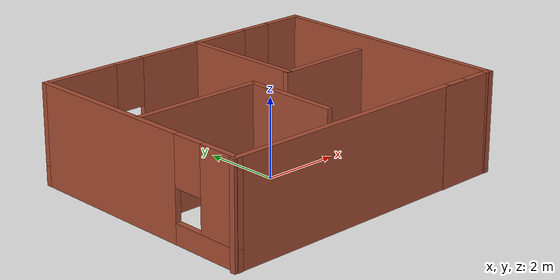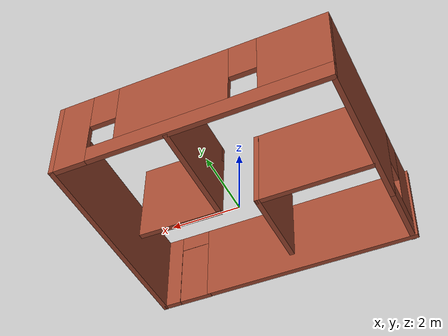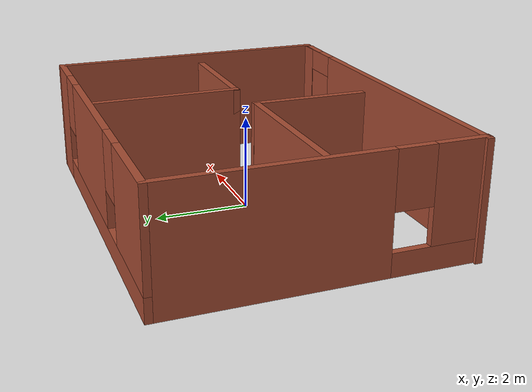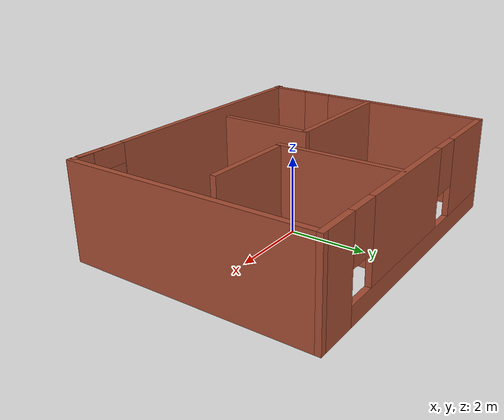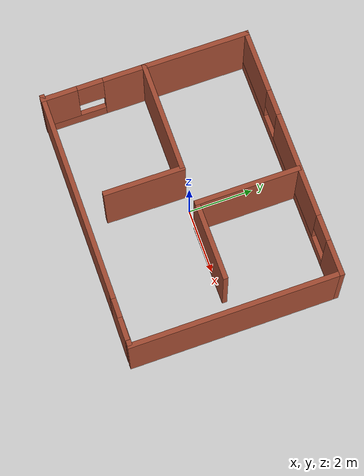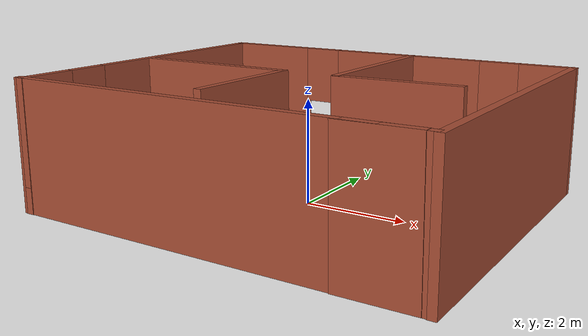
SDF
<?xml version='1.0'?>
<sdf version='1.6'>
  <model name='airmate_map'>
    <link name='Wall_0'>
      <pose frame=''>-0.07467 -3.15181 0 0 -0 0</pose>
      <self_collide>0</self_collide>
      <kinematic>0</kinematic>
      <visual name='Wall_0_Visual_0'>
        <pose frame=''>-0.723418 0 1.25 0 -0 0</pose>
        <geometry>
          <box>
            <size>6.55316 0.15 2.5</size>
          </box>
        </geometry>
        <material>
          <script>
            <uri>file://media/materials/scripts/gazebo.material</uri>
            <name>Gazebo/Bricks</name>
          </script>
          <ambient>1 1 1 1</ambient>
          <diffuse>1 1 1 1</diffuse>
          <specular>0.2 0.2 0.2 1</specular>
          <emissive>0 0 0 1</emissive>
        </material>
        <cast_shadows>1</cast_shadows>
        <transparency>0</transparency>
      </visual>
      <visual name='Wall_0_Visual_1'>
        <pose frame=''>3.72658 0 1.25 0 -0 0</pose>
        <geometry>
          <box>
            <size>0.546836 0.15 2.5</size>
          </box>
        </geometry>
        <material>
          <script>
            <uri>file://media/materials/scripts/gazebo.material</uri>
            <name>Gazebo/Bricks</name>
          </script>
          <ambient>1 1 1 1</ambient>
          <diffuse>1 1 1 1</diffuse>
          <specular>0.2 0.2 0.2 1</specular>
          <emissive>0 0 0 1</emissive>
        </material>
        <cast_shadows>1</cast_shadows>
        <transparency>0</transparency>
      </visual>
      <visual name='Wall_0_Visual_2'>
        <pose frame=''>3.00316 0 2.25 0 -0 0</pose>
        <geometry>
          <box>
            <size>0.9 0.15 0.5</size>
          </box>
        </geometry>
        <material>
          <script>
            <uri>file://media/materials/scripts/gazebo.material</uri>
            <name>Gazebo/Bricks</name>
          </script>
          <ambient>1 1 1 1</ambient>
          <diffuse>1 1 1 1</diffuse>
          <specular>0.2 0.2 0.2 1</specular>
          <emissive>0 0 0 1</emissive>
        </material>
        <cast_shadows>1</cast_shadows>
        <transparency>0</transparency>
      </visual>
      <collision name='Wall_0_Collision_0'>
        <laser_retro>0</laser_retro>
        <max_contacts>10</max_contacts>
        <pose frame=''>-0.723418 0 1.25 0 -0 0</pose>
        <geometry>
          <box>
            <size>6.55316 0.15 2.5</size>
          </box>
        </geometry>
        <surface>
          <friction>
            <ode>
              <mu>1</mu>
              <mu2>1</mu2>
              <fdir1>0 0 0</fdir1>
              <slip1>0</slip1>
              <slip2>0</slip2>
            </ode>
            <torsional>
              <coefficient>1</coefficient>
              <patch_radius>0</patch_radius>
              <surface_radius>0</surface_radius>
              <use_patch_radius>1</use_patch_radius>
              <ode>
                <slip>0</slip>
              </ode>
            </torsional>
          </friction>
          <bounce>
            <restitution_coefficient>0</restitution_coefficient>
            <threshold>1e+06</threshold>
          </bounce>
          <contact>
            <collide_without_contact>0</collide_without_contact>
            <collide_without_contact_bitmask>1</collide_without_contact_bitmask>
            <collide_bitmask>1</collide_bitmask>
            <ode>
              <soft_cfm>0</soft_cfm>
              <soft_erp>0.2</soft_erp>
              <kp>1e+13</kp>
              <kd>1</kd>
              <max_vel>0.01</max_vel>
              <min_depth>0</min_depth>
            </ode>
            <bullet>
              <split_impulse>1</split_impulse>
              <split_impulse_penetration_threshold>-0.01</split_impulse_penetration_threshold>
              <soft_cfm>0</soft_cfm>
              <soft_erp>0.2</soft_erp>
              <kp>1e+13</kp>
              <kd>1</kd>
            </bullet>
          </contact>
        </surface>
      </collision>
      <collision name='Wall_0_Collision_1'>
        <laser_retro>0</laser_retro>
        <max_contacts>10</max_contacts>
        <pose frame=''>3.72658 0 1.25 0 -0 0</pose>
        <geometry>
          <box>
            <size>0.546836 0.15 2.5</size>
          </box>
        </geometry>
        <surface>
          <friction>
            <ode>
              <mu>1</mu>
              <mu2>1</mu2>
              <fdir1>0 0 0</fdir1>
              <slip1>0</slip1>
              <slip2>0</slip2>
            </ode>
            <torsional>
              <coefficient>1</coefficient>
              <patch_radius>0</patch_radius>
              <surface_radius>0</surface_radius>
              <use_patch_radius>1</use_patch_radius>
              <ode>
                <slip>0</slip>
              </ode>
            </torsional>
          </friction>
          <bounce>
            <restitution_coefficient>0</restitution_coefficient>
            <threshold>1e+06</threshold>
          </bounce>
          <contact>
            <collide_without_contact>0</collide_without_contact>
            <collide_without_contact_bitmask>1</collide_without_contact_bitmask>
            <collide_bitmask>1</collide_bitmask>
            <ode>
              <soft_cfm>0</soft_cfm>
              <soft_erp>0.2</soft_erp>
              <kp>1e+13</kp>
              <kd>1</kd>
              <max_vel>0.01</max_vel>
              <min_depth>0</min_depth>
            </ode>
            <bullet>
              <split_impulse>1</split_impulse>
              <split_impulse_penetration_threshold>-0.01</split_impulse_penetration_threshold>
              <soft_cfm>0</soft_cfm>
              <soft_erp>0.2</soft_erp>
              <kp>1e+13</kp>
              <kd>1</kd>
            </bullet>
          </contact>
        </surface>
      </collision>
      <collision name='Wall_0_Collision_2'>
        <laser_retro>0</laser_retro>
        <max_contacts>10</max_contacts>
        <pose frame=''>3.00316 0 2.25 0 -0 0</pose>
        <geometry>
          <box>
            <size>0.9 0.15 0.5</size>
          </box>
        </geometry>
        <surface>
          <friction>
            <ode>
              <mu>1</mu>
              <mu2>1</mu2>
              <fdir1>0 0 0</fdir1>
              <slip1>0</slip1>
              <slip2>0</slip2>
            </ode>
            <torsional>
              <coefficient>1</coefficient>
              <patch_radius>0</patch_radius>
              <surface_radius>0</surface_radius>
              <use_patch_radius>1</use_patch_radius>
              <ode>
                <slip>0</slip>
              </ode>
            </torsional>
          </friction>
          <bounce>
            <restitution_coefficient>0</restitution_coefficient>
            <threshold>1e+06</threshold>
          </bounce>
          <contact>
            <collide_without_contact>0</collide_without_contact>
            <collide_without_contact_bitmask>1</collide_without_contact_bitmask>
            <collide_bitmask>1</collide_bitmask>
            <ode>
              <soft_cfm>0</soft_cfm>
              <soft_erp>0.2</soft_erp>
              <kp>1e+13</kp>
              <kd>1</kd>
              <max_vel>0.01</max_vel>
              <min_depth>0</min_depth>
            </ode>
            <bullet>
              <split_impulse>1</split_impulse>
              <split_impulse_penetration_threshold>-0.01</split_impulse_penetration_threshold>
              <soft_cfm>0</soft_cfm>
              <soft_erp>0.2</soft_erp>
              <kp>1e+13</kp>
              <kd>1</kd>
            </bullet>
          </contact>
        </surface>
      </collision>
    </link>
    <link name='Wall_1'>
      <pose frame=''>3.925 0.010244 0 0 -0 1.5708</pose>
      <self_collide>0</self_collide>
      <kinematic>0</kinematic>
      <visual name='Wall_1_Visual'>
        <pose frame=''>0 0 1.25 0 -0 0</pose>
        <geometry>
          <box>
            <size>6.5 0.15 2.5</size>
          </box>
        </geometry>
        <material>
          <script>
            <uri>file://media/materials/scripts/gazebo.material</uri>
            <name>Gazebo/Bricks</name>
          </script>
          <ambient>1 1 1 1</ambient>
          <diffuse>1 1 1 1</diffuse>
          <specular>0.2 0.2 0.2 1</specular>
          <emissive>0 0 0 1</emissive>
        </material>
        <cast_shadows>1</cast_shadows>
        <transparency>0</transparency>
      </visual>
      <collision name='Wall_1_Collision'>
        <laser_retro>0</laser_retro>
        <max_contacts>10</max_contacts>
        <pose frame=''>0 0 1.25 0 -0 0</pose>
        <geometry>
          <box>
            <size>6.5 0.15 2.5</size>
          </box>
        </geometry>
        <surface>
          <friction>
            <ode>
              <mu>1</mu>
              <mu2>1</mu2>
              <fdir1>0 0 0</fdir1>
              <slip1>0</slip1>
              <slip2>0</slip2>
            </ode>
            <torsional>
              <coefficient>1</coefficient>
              <patch_radius>0</patch_radius>
              <surface_radius>0</surface_radius>
              <use_patch_radius>1</use_patch_radius>
              <ode>
                <slip>0</slip>
              </ode>
            </torsional>
          </friction>
          <bounce>
            <restitution_coefficient>0</restitution_coefficient>
            <threshold>1e+06</threshold>
          </bounce>
          <contact>
            <collide_without_contact>0</collide_without_contact>
            <collide_without_contact_bitmask>1</collide_without_contact_bitmask>
            <collide_bitmask>1</collide_bitmask>
            <ode>
              <soft_cfm>0</soft_cfm>
              <soft_erp>0.2</soft_erp>
              <kp>1e+13</kp>
              <kd>1</kd>
              <max_vel>0.01</max_vel>
              <min_depth>0</min_depth>
            </ode>
            <bullet>
              <split_impulse>1</split_impulse>
              <split_impulse_penetration_threshold>-0.01</split_impulse_penetration_threshold>
              <soft_cfm>0</soft_cfm>
              <soft_erp>0.2</soft_erp>
              <kp>1e+13</kp>
              <kd>1</kd>
            </bullet>
          </contact>
        </surface>
      </collision>
    </link>
    <link name='Wall_10'>
      <pose frame=''>0.57679 1.57908 0 0 -0 1.5708</pose>
      <self_collide>0</self_collide>
      <kinematic>0</kinematic>
      <visual name='Wall_10_Visual'>
        <pose frame=''>0 0 1.25 0 -0 0</pose>
        <geometry>
          <box>
            <size>3.25 0.15 2.5</size>
          </box>
        </geometry>
        <material>
          <script>
            <uri>file://media/materials/scripts/gazebo.material</uri>
            <name>Gazebo/Bricks</name>
          </script>
          <ambient>1 1 1 1</ambient>
          <diffuse>1 1 1 1</diffuse>
          <specular>0.2 0.2 0.2 1</specular>
          <emissive>0 0 0 1</emissive>
        </material>
        <cast_shadows>1</cast_shadows>
        <transparency>0</transparency>
      </visual>
      <collision name='Wall_10_Collision'>
        <laser_retro>0</laser_retro>
        <max_contacts>10</max_contacts>
        <pose frame=''>0 0 1.25 0 -0 0</pose>
        <geometry>
          <box>
            <size>3.25 0.15 2.5</size>
          </box>
        </geometry>
        <surface>
          <friction>
            <ode>
              <mu>1</mu>
              <mu2>1</mu2>
              <fdir1>0 0 0</fdir1>
              <slip1>0</slip1>
              <slip2>0</slip2>
            </ode>
            <torsional>
              <coefficient>1</coefficient>
              <patch_radius>0</patch_radius>
              <surface_radius>0</surface_radius>
              <use_patch_radius>1</use_patch_radius>
              <ode>
                <slip>0</slip>
              </ode>
            </torsional>
          </friction>
          <bounce>
            <restitution_coefficient>0</restitution_coefficient>
            <threshold>1e+06</threshold>
          </bounce>
          <contact>
            <collide_without_contact>0</collide_without_contact>
            <collide_without_contact_bitmask>1</collide_without_contact_bitmask>
            <collide_bitmask>1</collide_bitmask>
            <ode>
              <soft_cfm>0</soft_cfm>
              <soft_erp>0.2</soft_erp>
              <kp>1e+13</kp>
              <kd>1</kd>
              <max_vel>0.01</max_vel>
              <min_depth>0</min_depth>
            </ode>
            <bullet>
              <split_impulse>1</split_impulse>
              <split_impulse_penetration_threshold>-0.01</split_impulse_penetration_threshold>
              <soft_cfm>0</soft_cfm>
              <soft_erp>0.2</soft_erp>
              <kp>1e+13</kp>
              <kd>1</kd>
            </bullet>
          </contact>
        </surface>
      </collision>
    </link>
    <link name='Wall_2'>
      <pose frame=''>0 3.18524 0 0 -0 3.14159</pose>
      <self_collide>0</self_collide>
      <kinematic>0</kinematic>
      <visual name='Wall_2_Visual_0'>
        <pose frame=''>-3.45031 0 1.25 0 -0 0</pose>
        <geometry>
          <box>
            <size>1.09939 0.15 2.5</size>
          </box>
        </geometry>
        <material>
          <script>
            <uri>file://media/materials/scripts/gazebo.material</uri>
            <name>Gazebo/Bricks</name>
          </script>
          <ambient>1 1 1 1</ambient>
          <diffuse>1 1 1 1</diffuse>
          <specular>0.2 0.2 0.2 1</specular>
          <emissive>0 0 0 1</emissive>
        </material>
        <cast_shadows>1</cast_shadows>
        <transparency>0</transparency>
      </visual>
      <visual name='Wall_2_Visual_1'>
        <pose frame=''>0.549693 0 0.25 0 -0 0</pose>
        <geometry>
          <box>
            <size>6.90061 0.15 0.5</size>
          </box>
        </geometry>
        <material>
          <script>
            <uri>file://media/materials/scripts/gazebo.material</uri>
            <name>Gazebo/Bricks</name>
          </script>
          <ambient>1 1 1 1</ambient>
          <diffuse>1 1 1 1</diffuse>
          <specular>0.2 0.2 0.2 1</specular>
          <emissive>0 0 0 1</emissive>
        </material>
        <cast_shadows>1</cast_shadows>
        <transparency>0</transparency>
      </visual>
      <visual name='Wall_2_Visual_2'>
        <pose frame=''>-0.457351 0 1.5 0 -0 0</pose>
        <geometry>
          <box>
            <size>3.28653 0.15 2</size>
          </box>
        </geometry>
        <material>
          <script>
            <uri>file://media/materials/scripts/gazebo.material</uri>
            <name>Gazebo/Bricks</name>
          </script>
          <ambient>1 1 1 1</ambient>
          <diffuse>1 1 1 1</diffuse>
          <specular>0.2 0.2 0.2 1</specular>
          <emissive>0 0 0 1</emissive>
        </material>
        <cast_shadows>1</cast_shadows>
        <transparency>0</transparency>
      </visual>
      <visual name='Wall_2_Visual_3'>
        <pose frame=''>2.99296 0 1.5 0 -0 0</pose>
        <geometry>
          <box>
            <size>2.01409 0.15 2</size>
          </box>
        </geometry>
        <material>
          <script>
            <uri>file://media/materials/scripts/gazebo.material</uri>
            <name>Gazebo/Bricks</name>
          </script>
          <ambient>1 1 1 1</ambient>
          <diffuse>1 1 1 1</diffuse>
          <specular>0.2 0.2 0.2 1</specular>
          <emissive>0 0 0 1</emissive>
        </material>
        <cast_shadows>1</cast_shadows>
        <transparency>0</transparency>
      </visual>
      <visual name='Wall_2_Visual_4'>
        <pose frame=''>-2.50061 0 1.9 0 -0 0</pose>
        <geometry>
          <box>
            <size>0.8 0.15 1.2</size>
          </box>
        </geometry>
        <material>
          <script>
            <uri>file://media/materials/scripts/gazebo.material</uri>
            <name>Gazebo/Bricks</name>
          </script>
          <ambient>1 1 1 1</ambient>
          <diffuse>1 1 1 1</diffuse>
          <specular>0.2 0.2 0.2 1</specular>
          <emissive>0 0 0 1</emissive>
        </material>
        <cast_shadows>1</cast_shadows>
        <transparency>0</transparency>
      </visual>
      <visual name='Wall_2_Visual_5'>
        <pose frame=''>1.58591 0 1.9 0 -0 0</pose>
        <geometry>
          <box>
            <size>0.8 0.15 1.2</size>
          </box>
        </geometry>
        <material>
          <script>
            <uri>file://media/materials/scripts/gazebo.material</uri>
            <name>Gazebo/Bricks</name>
          </script>
          <ambient>1 1 1 1</ambient>
          <diffuse>1 1 1 1</diffuse>
          <specular>0.2 0.2 0.2 1</specular>
          <emissive>0 0 0 1</emissive>
        </material>
        <cast_shadows>1</cast_shadows>
        <transparency>0</transparency>
      </visual>
      <collision name='Wall_2_Collision_0'>
        <laser_retro>0</laser_retro>
        <max_contacts>10</max_contacts>
        <pose frame=''>-3.45031 0 1.25 0 -0 0</pose>
        <geometry>
          <box>
            <size>1.09939 0.15 2.5</size>
          </box>
        </geometry>
        <surface>
          <friction>
            <ode>
              <mu>1</mu>
              <mu2>1</mu2>
              <fdir1>0 0 0</fdir1>
              <slip1>0</slip1>
              <slip2>0</slip2>
            </ode>
            <torsional>
              <coefficient>1</coefficient>
              <patch_radius>0</patch_radius>
              <surface_radius>0</surface_radius>
              <use_patch_radius>1</use_patch_radius>
              <ode>
                <slip>0</slip>
              </ode>
            </torsional>
          </friction>
          <bounce>
            <restitution_coefficient>0</restitution_coefficient>
            <threshold>1e+06</threshold>
          </bounce>
          <contact>
            <collide_without_contact>0</collide_without_contact>
            <collide_without_contact_bitmask>1</collide_without_contact_bitmask>
            <collide_bitmask>1</collide_bitmask>
            <ode>
              <soft_cfm>0</soft_cfm>
              <soft_erp>0.2</soft_erp>
              <kp>1e+13</kp>
              <kd>1</kd>
              <max_vel>0.01</max_vel>
              <min_depth>0</min_depth>
            </ode>
            <bullet>
              <split_impulse>1</split_impulse>
              <split_impulse_penetration_threshold>-0.01</split_impulse_penetration_threshold>
              <soft_cfm>0</soft_cfm>
              <soft_erp>0.2</soft_erp>
              <kp>1e+13</kp>
              <kd>1</kd>
            </bullet>
          </contact>
        </surface>
      </collision>
      <collision name='Wall_2_Collision_1'>
        <laser_retro>0</laser_retro>
        <max_contacts>10</max_contacts>
        <pose frame=''>0.549693 0 0.25 0 -0 0</pose>
        <geometry>
          <box>
            <size>6.90061 0.15 0.5</size>
          </box>
        </geometry>
        <surface>
          <friction>
            <ode>
              <mu>1</mu>
              <mu2>1</mu2>
              <fdir1>0 0 0</fdir1>
              <slip1>0</slip1>
              <slip2>0</slip2>
            </ode>
            <torsional>
              <coefficient>1</coefficient>
              <patch_radius>0</patch_radius>
              <surface_radius>0</surface_radius>
              <use_patch_radius>1</use_patch_radius>
              <ode>
                <slip>0</slip>
              </ode>
            </torsional>
          </friction>
          <bounce>
            <restitution_coefficient>0</restitution_coefficient>
            <threshold>1e+06</threshold>
          </bounce>
          <contact>
            <collide_without_contact>0</collide_without_contact>
            <collide_without_contact_bitmask>1</collide_without_contact_bitmask>
            <collide_bitmask>1</collide_bitmask>
            <ode>
              <soft_cfm>0</soft_cfm>
              <soft_erp>0.2</soft_erp>
              <kp>1e+13</kp>
              <kd>1</kd>
              <max_vel>0.01</max_vel>
              <min_depth>0</min_depth>
            </ode>
            <bullet>
              <split_impulse>1</split_impulse>
              <split_impulse_penetration_threshold>-0.01</split_impulse_penetration_threshold>
              <soft_cfm>0</soft_cfm>
              <soft_erp>0.2</soft_erp>
              <kp>1e+13</kp>
              <kd>1</kd>
            </bullet>
          </contact>
        </surface>
      </collision>
      <collision name='Wall_2_Collision_3'>
        <laser_retro>0</laser_retro>
        <max_contacts>10</max_contacts>
        <pose frame=''>2.99296 0 1.5 0 -0 0</pose>
        <geometry>
          <box>
            <size>2.01409 0.15 2</size>
          </box>
        </geometry>
        <surface>
          <friction>
            <ode>
              <mu>1</mu>
              <mu2>1</mu2>
              <fdir1>0 0 0</fdir1>
              <slip1>0</slip1>
              <slip2>0</slip2>
            </ode>
            <torsional>
              <coefficient>1</coefficient>
              <patch_radius>0</patch_radius>
              <surface_radius>0</surface_radius>
              <use_patch_radius>1</use_patch_radius>
              <ode>
                <slip>0</slip>
              </ode>
            </torsional>
          </friction>
          <bounce>
            <restitution_coefficient>0</restitution_coefficient>
            <threshold>1e+06</threshold>
          </bounce>
          <contact>
            <collide_without_contact>0</collide_without_contact>
            <collide_without_contact_bitmask>1</collide_without_contact_bitmask>
            <collide_bitmask>1</collide_bitmask>
            <ode>
              <soft_cfm>0</soft_cfm>
              <soft_erp>0.2</soft_erp>
              <kp>1e+13</kp>
              <kd>1</kd>
              <max_vel>0.01</max_vel>
              <min_depth>0</min_depth>
            </ode>
            <bullet>
              <split_impulse>1</split_impulse>
              <split_impulse_penetration_threshold>-0.01</split_impulse_penetration_threshold>
              <soft_cfm>0</soft_cfm>
              <soft_erp>0.2</soft_erp>
              <kp>1e+13</kp>
              <kd>1</kd>
            </bullet>
          </contact>
        </surface>
      </collision>
      <collision name='Wall_2_Collision_2'>
        <laser_retro>0</laser_retro>
        <max_contacts>10</max_contacts>
        <pose frame=''>-0.457351 0 1.5 0 -0 0</pose>
        <geometry>
          <box>
            <size>3.28653 0.15 2</size>
          </box>
        </geometry>
        <surface>
          <friction>
            <ode>
              <mu>1</mu>
              <mu2>1</mu2>
              <fdir1>0 0 0</fdir1>
              <slip1>0</slip1>
              <slip2>0</slip2>
            </ode>
            <torsional>
              <coefficient>1</coefficient>
              <patch_radius>0</patch_radius>
              <surface_radius>0</surface_radius>
              <use_patch_radius>1</use_patch_radius>
              <ode>
                <slip>0</slip>
              </ode>
            </torsional>
          </friction>
          <bounce>
            <restitution_coefficient>0</restitution_coefficient>
            <threshold>1e+06</threshold>
          </bounce>
          <contact>
            <collide_without_contact>0</collide_without_contact>
            <collide_without_contact_bitmask>1</collide_without_contact_bitmask>
            <collide_bitmask>1</collide_bitmask>
            <ode>
              <soft_cfm>0</soft_cfm>
              <soft_erp>0.2</soft_erp>
              <kp>1e+13</kp>
              <kd>1</kd>
              <max_vel>0.01</max_vel>
              <min_depth>0</min_depth>
            </ode>
            <bullet>
              <split_impulse>1</split_impulse>
              <split_impulse_penetration_threshold>-0.01</split_impulse_penetration_threshold>
              <soft_cfm>0</soft_cfm>
              <soft_erp>0.2</soft_erp>
              <kp>1e+13</kp>
              <kd>1</kd>
            </bullet>
          </contact>
        </surface>
      </collision>
      <collision name='Wall_2_Collision_4'>
        <laser_retro>0</laser_retro>
        <max_contacts>10</max_contacts>
        <pose frame=''>-2.50061 0 1.9 0 -0 0</pose>
        <geometry>
          <box>
            <size>0.8 0.15 1.2</size>
          </box>
        </geometry>
        <surface>
          <friction>
            <ode>
              <mu>1</mu>
              <mu2>1</mu2>
              <fdir1>0 0 0</fdir1>
              <slip1>0</slip1>
              <slip2>0</slip2>
            </ode>
            <torsional>
              <coefficient>1</coefficient>
              <patch_radius>0</patch_radius>
              <surface_radius>0</surface_radius>
              <use_patch_radius>1</use_patch_radius>
              <ode>
                <slip>0</slip>
              </ode>
            </torsional>
          </friction>
          <bounce>
            <restitution_coefficient>0</restitution_coefficient>
            <threshold>1e+06</threshold>
          </bounce>
          <contact>
            <collide_without_contact>0</collide_without_contact>
            <collide_without_contact_bitmask>1</collide_without_contact_bitmask>
            <collide_bitmask>1</collide_bitmask>
            <ode>
              <soft_cfm>0</soft_cfm>
              <soft_erp>0.2</soft_erp>
              <kp>1e+13</kp>
              <kd>1</kd>
              <max_vel>0.01</max_vel>
              <min_depth>0</min_depth>
            </ode>
            <bullet>
              <split_impulse>1</split_impulse>
              <split_impulse_penetration_threshold>-0.01</split_impulse_penetration_threshold>
              <soft_cfm>0</soft_cfm>
              <soft_erp>0.2</soft_erp>
              <kp>1e+13</kp>
              <kd>1</kd>
            </bullet>
          </contact>
        </surface>
      </collision>
      <collision name='Wall_2_Collision_5'>
        <laser_retro>0</laser_retro>
        <max_contacts>10</max_contacts>
        <pose frame=''>1.58591 0 1.9 0 -0 0</pose>
        <geometry>
          <box>
            <size>0.8 0.15 1.2</size>
          </box>
        </geometry>
        <surface>
          <friction>
            <ode>
              <mu>1</mu>
              <mu2>1</mu2>
              <fdir1>0 0 0</fdir1>
              <slip1>0</slip1>
              <slip2>0</slip2>
            </ode>
            <torsional>
              <coefficient>1</coefficient>
              <patch_radius>0</patch_radius>
              <surface_radius>0</surface_radius>
              <use_patch_radius>1</use_patch_radius>
              <ode>
                <slip>0</slip>
              </ode>
            </torsional>
          </friction>
          <bounce>
            <restitution_coefficient>0</restitution_coefficient>
            <threshold>1e+06</threshold>
          </bounce>
          <contact>
            <collide_without_contact>0</collide_without_contact>
            <collide_without_contact_bitmask>1</collide_without_contact_bitmask>
            <collide_bitmask>1</collide_bitmask>
            <ode>
              <soft_cfm>0</soft_cfm>
              <soft_erp>0.2</soft_erp>
              <kp>1e+13</kp>
              <kd>1</kd>
              <max_vel>0.01</max_vel>
              <min_depth>0</min_depth>
            </ode>
            <bullet>
              <split_impulse>1</split_impulse>
              <split_impulse_penetration_threshold>-0.01</split_impulse_penetration_threshold>
              <soft_cfm>0</soft_cfm>
              <soft_erp>0.2</soft_erp>
              <kp>1e+13</kp>
              <kd>1</kd>
            </bullet>
          </contact>
        </surface>
      </collision>
    </link>
    <link name='Wall_3'>
      <pose frame=''>-3.925 0.010244 0 0 0 -1.5708</pose>
      <self_collide>0</self_collide>
      <kinematic>0</kinematic>
      <visual name='Wall_3_Visual_0'>
        <pose frame=''>-0.961243 0 1.25 0 -0 0</pose>
        <geometry>
          <box>
            <size>4.57751 0.15 2.5</size>
          </box>
        </geometry>
        <material>
          <script>
            <uri>file://media/materials/scripts/gazebo.material</uri>
            <name>Gazebo/Bricks</name>
          </script>
          <ambient>1 1 1 1</ambient>
          <diffuse>1 1 1 1</diffuse>
          <specular>0.2 0.2 0.2 1</specular>
          <emissive>0 0 0 1</emissive>
        </material>
        <cast_shadows>1</cast_shadows>
        <transparency>0</transparency>
      </visual>
      <visual name='Wall_3_Visual_1'>
        <pose frame=''>2.28876 0 0.25 0 -0 0</pose>
        <geometry>
          <box>
            <size>1.92249 0.15 0.5</size>
          </box>
        </geometry>
        <material>
          <script>
            <uri>file://media/materials/scripts/gazebo.material</uri>
            <name>Gazebo/Bricks</name>
          </script>
          <ambient>1 1 1 1</ambient>
          <diffuse>1 1 1 1</diffuse>
          <specular>0.2 0.2 0.2 1</specular>
          <emissive>0 0 0 1</emissive>
        </material>
        <cast_shadows>1</cast_shadows>
        <transparency>0</transparency>
      </visual>
      <visual name='Wall_3_Visual_2'>
        <pose frame=''>2.68876 0 1.5 0 -0 0</pose>
        <geometry>
          <box>
            <size>1.12249 0.15 2</size>
          </box>
        </geometry>
        <material>
          <script>
            <uri>file://media/materials/scripts/gazebo.material</uri>
            <name>Gazebo/Bricks</name>
          </script>
          <ambient>1 1 1 1</ambient>
          <diffuse>1 1 1 1</diffuse>
          <specular>0.2 0.2 0.2 1</specular>
          <emissive>0 0 0 1</emissive>
        </material>
        <cast_shadows>1</cast_shadows>
        <transparency>0</transparency>
      </visual>
      <visual name='Wall_3_Visual_3'>
        <pose frame=''>1.72751 0 1.9 0 -0 0</pose>
        <geometry>
          <box>
            <size>0.8 0.15 1.2</size>
          </box>
        </geometry>
        <material>
          <script>
            <uri>file://media/materials/scripts/gazebo.material</uri>
            <name>Gazebo/Bricks</name>
          </script>
          <ambient>1 1 1 1</ambient>
          <diffuse>1 1 1 1</diffuse>
          <specular>0.2 0.2 0.2 1</specular>
          <emissive>0 0 0 1</emissive>
        </material>
        <cast_shadows>1</cast_shadows>
        <transparency>0</transparency>
      </visual>
      <collision name='Wall_3_Collision_0'>
        <laser_retro>0</laser_retro>
        <max_contacts>10</max_contacts>
        <pose frame=''>-0.961243 0 1.25 0 -0 0</pose>
        <geometry>
          <box>
            <size>4.57751 0.15 2.5</size>
          </box>
        </geometry>
        <surface>
          <friction>
            <ode>
              <mu>1</mu>
              <mu2>1</mu2>
              <fdir1>0 0 0</fdir1>
              <slip1>0</slip1>
              <slip2>0</slip2>
            </ode>
            <torsional>
              <coefficient>1</coefficient>
              <patch_radius>0</patch_radius>
              <surface_radius>0</surface_radius>
              <use_patch_radius>1</use_patch_radius>
              <ode>
                <slip>0</slip>
              </ode>
            </torsional>
          </friction>
          <bounce>
            <restitution_coefficient>0</restitution_coefficient>
            <threshold>1e+06</threshold>
          </bounce>
          <contact>
            <collide_without_contact>0</collide_without_contact>
            <collide_without_contact_bitmask>1</collide_without_contact_bitmask>
            <collide_bitmask>1</collide_bitmask>
            <ode>
              <soft_cfm>0</soft_cfm>
              <soft_erp>0.2</soft_erp>
              <kp>1e+13</kp>
              <kd>1</kd>
              <max_vel>0.01</max_vel>
              <min_depth>0</min_depth>
            </ode>
            <bullet>
              <split_impulse>1</split_impulse>
              <split_impulse_penetration_threshold>-0.01</split_impulse_penetration_threshold>
              <soft_cfm>0</soft_cfm>
              <soft_erp>0.2</soft_erp>
              <kp>1e+13</kp>
              <kd>1</kd>
            </bullet>
          </contact>
        </surface>
      </collision>
      <collision name='Wall_3_Collision_1'>
        <laser_retro>0</laser_retro>
        <max_contacts>10</max_contacts>
        <pose frame=''>2.28876 0 0.25 0 -0 0</pose>
        <geometry>
          <box>
            <size>1.92249 0.15 0.5</size>
          </box>
        </geometry>
        <surface>
          <friction>
            <ode>
              <mu>1</mu>
              <mu2>1</mu2>
              <fdir1>0 0 0</fdir1>
              <slip1>0</slip1>
              <slip2>0</slip2>
            </ode>
            <torsional>
              <coefficient>1</coefficient>
              <patch_radius>0</patch_radius>
              <surface_radius>0</surface_radius>
              <use_patch_radius>1</use_patch_radius>
              <ode>
                <slip>0</slip>
              </ode>
            </torsional>
          </friction>
          <bounce>
            <restitution_coefficient>0</restitution_coefficient>
            <threshold>1e+06</threshold>
          </bounce>
          <contact>
            <collide_without_contact>0</collide_without_contact>
            <collide_without_contact_bitmask>1</collide_without_contact_bitmask>
            <collide_bitmask>1</collide_bitmask>
            <ode>
              <soft_cfm>0</soft_cfm>
              <soft_erp>0.2</soft_erp>
              <kp>1e+13</kp>
              <kd>1</kd>
              <max_vel>0.01</max_vel>
              <min_depth>0</min_depth>
            </ode>
            <bullet>
              <split_impulse>1</split_impulse>
              <split_impulse_penetration_threshold>-0.01</split_impulse_penetration_threshold>
              <soft_cfm>0</soft_cfm>
              <soft_erp>0.2</soft_erp>
              <kp>1e+13</kp>
              <kd>1</kd>
            </bullet>
          </contact>
        </surface>
      </collision>
      <collision name='Wall_3_Collision_3'>
        <laser_retro>0</laser_retro>
        <max_contacts>10</max_contacts>
        <pose frame=''>1.72751 0 1.9 0 -0 0</pose>
        <geometry>
          <box>
            <size>0.8 0.15 1.2</size>
          </box>
        </geometry>
        <surface>
          <friction>
            <ode>
              <mu>1</mu>
              <mu2>1</mu2>
              <fdir1>0 0 0</fdir1>
              <slip1>0</slip1>
              <slip2>0</slip2>
            </ode>
            <torsional>
              <coefficient>1</coefficient>
              <patch_radius>0</patch_radius>
              <surface_radius>0</surface_radius>
              <use_patch_radius>1</use_patch_radius>
              <ode>
                <slip>0</slip>
              </ode>
            </torsional>
          </friction>
          <bounce>
            <restitution_coefficient>0</restitution_coefficient>
            <threshold>1e+06</threshold>
          </bounce>
          <contact>
            <collide_without_contact>0</collide_without_contact>
            <collide_without_contact_bitmask>1</collide_without_contact_bitmask>
            <collide_bitmask>1</collide_bitmask>
            <ode>
              <soft_cfm>0</soft_cfm>
              <soft_erp>0.2</soft_erp>
              <kp>1e+13</kp>
              <kd>1</kd>
              <max_vel>0.01</max_vel>
              <min_depth>0</min_depth>
            </ode>
            <bullet>
              <split_impulse>1</split_impulse>
              <split_impulse_penetration_threshold>-0.01</split_impulse_penetration_threshold>
              <soft_cfm>0</soft_cfm>
              <soft_erp>0.2</soft_erp>
              <kp>1e+13</kp>
              <kd>1</kd>
            </bullet>
          </contact>
        </surface>
      </collision>
      <collision name='Wall_3_Collision_2'>
        <laser_retro>0</laser_retro>
        <max_contacts>10</max_contacts>
        <pose frame=''>2.68876 0 1.5 0 -0 0</pose>
        <geometry>
          <box>
            <size>1.12249 0.15 2</size>
          </box>
        </geometry>
        <surface>
          <friction>
            <ode>
              <mu>1</mu>
              <mu2>1</mu2>
              <fdir1>0 0 0</fdir1>
              <slip1>0</slip1>
              <slip2>0</slip2>
            </ode>
            <torsional>
              <coefficient>1</coefficient>
              <patch_radius>0</patch_radius>
              <surface_radius>0</surface_radius>
              <use_patch_radius>1</use_patch_radius>
              <ode>
                <slip>0</slip>
              </ode>
            </torsional>
          </friction>
          <bounce>
            <restitution_coefficient>0</restitution_coefficient>
            <threshold>1e+06</threshold>
          </bounce>
          <contact>
            <collide_without_contact>0</collide_without_contact>
            <collide_without_contact_bitmask>1</collide_without_contact_bitmask>
            <collide_bitmask>1</collide_bitmask>
            <ode>
              <soft_cfm>0</soft_cfm>
              <soft_erp>0.2</soft_erp>
              <kp>1e+13</kp>
              <kd>1</kd>
              <max_vel>0.01</max_vel>
              <min_depth>0</min_depth>
            </ode>
            <bullet>
              <split_impulse>1</split_impulse>
              <split_impulse_penetration_threshold>-0.01</split_impulse_penetration_threshold>
              <soft_cfm>0</soft_cfm>
              <soft_erp>0.2</soft_erp>
              <kp>1e+13</kp>
              <kd>1</kd>
            </bullet>
          </contact>
        </surface>
      </collision>
    </link>
    <link name='Wall_5'>
      <pose frame=''>-2.23479 -0.016544 0 0 -0 0</pose>
      <self_collide>0</self_collide>
      <kinematic>0</kinematic>
      <visual name='Wall_5_Visual'>
        <pose frame=''>0 0 1.25 0 -0 0</pose>
        <geometry>
          <box>
            <size>3.5 0.15 2.5</size>
          </box>
        </geometry>
        <material>
          <script>
            <uri>file://media/materials/scripts/gazebo.material</uri>
            <name>Gazebo/Bricks</name>
          </script>
          <ambient>1 1 1 1</ambient>
          <diffuse>1 1 1 1</diffuse>
          <specular>0.2 0.2 0.2 1</specular>
          <emissive>0 0 0 1</emissive>
        </material>
        <cast_shadows>1</cast_shadows>
        <transparency>0</transparency>
      </visual>
      <collision name='Wall_5_Collision'>
        <laser_retro>0</laser_retro>
        <max_contacts>10</max_contacts>
        <pose frame=''>0 0 1.25 0 -0 0</pose>
        <geometry>
          <box>
            <size>3.5 0.15 2.5</size>
          </box>
        </geometry>
        <surface>
          <friction>
            <ode>
              <mu>1</mu>
              <mu2>1</mu2>
              <fdir1>0 0 0</fdir1>
              <slip1>0</slip1>
              <slip2>0</slip2>
            </ode>
            <torsional>
              <coefficient>1</coefficient>
              <patch_radius>0</patch_radius>
              <surface_radius>0</surface_radius>
              <use_patch_radius>1</use_patch_radius>
              <ode>
                <slip>0</slip>
              </ode>
            </torsional>
          </friction>
          <bounce>
            <restitution_coefficient>0</restitution_coefficient>
            <threshold>1e+06</threshold>
          </bounce>
          <contact>
            <collide_without_contact>0</collide_without_contact>
            <collide_without_contact_bitmask>1</collide_without_contact_bitmask>
            <collide_bitmask>1</collide_bitmask>
            <ode>
              <soft_cfm>0</soft_cfm>
              <soft_erp>0.2</soft_erp>
              <kp>1e+13</kp>
              <kd>1</kd>
              <max_vel>0.01</max_vel>
              <min_depth>0</min_depth>
            </ode>
            <bullet>
              <split_impulse>1</split_impulse>
              <split_impulse_penetration_threshold>-0.01</split_impulse_penetration_threshold>
              <soft_cfm>0</soft_cfm>
              <soft_erp>0.2</soft_erp>
              <kp>1e+13</kp>
              <kd>1</kd>
            </bullet>
          </contact>
        </surface>
      </collision>
    </link>
    <link name='Wall_5_clone'>
      <pose frame=''>-0.540806 -1.19157 0 0.009565 6.3e-05 -1.5774</pose>
      <self_collide>0</self_collide>
      <kinematic>0</kinematic>
      <inertial>
        <inertia>
          <ixx>nan</ixx>
          <ixy>0</ixy>
          <ixz>0</ixz>
          <iyy>nan</iyy>
          <iyz>0</iyz>
          <izz>nan</izz>
        </inertia>
        <mass>0</mass>
        <pose frame=''>0 0 0 0 -0 0</pose>
      </inertial>
      <visual name='Wall_5_Visual'>
        <pose frame=''>0 0 1.25 0 -0 0</pose>
        <geometry>
          <box>
            <size>2.50201 0.15 2.5</size>
          </box>
        </geometry>
        <material>
          <script>
            <uri>file://media/materials/scripts/gazebo.material</uri>
            <name>Gazebo/Bricks</name>
          </script>
          <ambient>1 1 1 1</ambient>
          <diffuse>1 1 1 1</diffuse>
          <specular>0.2 0.2 0.2 1</specular>
          <emissive>0 0 0 1</emissive>
          <shader type='pixel'/>
        </material>
        <cast_shadows>1</cast_shadows>
        <transparency>0</transparency>
      </visual>
      <collision name='Wall_5_Collision'>
        <laser_retro>0</laser_retro>
        <max_contacts>10</max_contacts>
        <pose frame=''>0 0 1.25 0 -0 0</pose>
        <geometry>
          <box>
            <size>2.50201 0.15 2.5</size>
          </box>
        </geometry>
        <surface>
          <friction>
            <ode>
              <mu>1</mu>
              <mu2>1</mu2>
              <fdir1>0 0 0</fdir1>
              <slip1>0</slip1>
              <slip2>0</slip2>
            </ode>
            <torsional>
              <coefficient>1</coefficient>
              <patch_radius>0</patch_radius>
              <surface_radius>0</surface_radius>
              <use_patch_radius>1</use_patch_radius>
              <ode>
                <slip>0</slip>
              </ode>
            </torsional>
          </friction>
          <bounce>
            <restitution_coefficient>0</restitution_coefficient>
            <threshold>1e+06</threshold>
          </bounce>
          <contact>
            <collide_without_contact>0</collide_without_contact>
            <collide_without_contact_bitmask>1</collide_without_contact_bitmask>
            <collide_bitmask>1</collide_bitmask>
            <ode>
              <soft_cfm>0</soft_cfm>
              <soft_erp>0.2</soft_erp>
              <kp>1e+13</kp>
              <kd>1</kd>
              <max_vel>0.01</max_vel>
              <min_depth>0</min_depth>
            </ode>
            <bullet>
              <split_impulse>1</split_impulse>
              <split_impulse_penetration_threshold>-0.01</split_impulse_penetration_threshold>
              <soft_cfm>0</soft_cfm>
              <soft_erp>0.2</soft_erp>
              <kp>1e+13</kp>
              <kd>1</kd>
            </bullet>
          </contact>
        </surface>
      </collision>
    </link>
    <link name='Wall_5_clone_clone'>
      <pose frame=''>1.77186 0.027852 0 4.6e-05 0.009565 -3.13682</pose>
      <inertial>
        <inertia>
          <ixx>nan</ixx>
          <ixy>0</ixy>
          <ixz>0</ixz>
          <iyy>nan</iyy>
          <iyz>0</iyz>
          <izz>nan</izz>
        </inertia>
        <mass>0</mass>
        <pose frame=''>0 0 0 0 -0 0</pose>
      </inertial>
      <self_collide>0</self_collide>
      <kinematic>0</kinematic>
      <visual name='Wall_5_Visual'>
        <pose frame=''>0 0 1.25 0 -0 0</pose>
        <geometry>
          <box>
            <size>2.50201 0.15 2.5</size>
          </box>
        </geometry>
        <material>
          <script>
            <uri>file://media/materials/scripts/gazebo.material</uri>
            <name>Gazebo/Bricks</name>
          </script>
          <ambient>1 1 1 1</ambient>
          <diffuse>1 1 1 1</diffuse>
          <specular>0.2 0.2 0.2 1</specular>
          <emissive>0 0 0 1</emissive>
          <shader type='pixel'/>
        </material>
        <cast_shadows>1</cast_shadows>
        <transparency>0</transparency>
      </visual>
      <collision name='Wall_5_Collision'>
        <laser_retro>0</laser_retro>
        <max_contacts>10</max_contacts>
        <pose frame=''>0 0 1.25 0 -0 0</pose>
        <geometry>
          <box>
            <size>2.50201 0.15 2.5</size>
          </box>
        </geometry>
        <surface>
          <friction>
            <ode>
              <mu>1</mu>
              <mu2>1</mu2>
              <fdir1>0 0 0</fdir1>
              <slip1>0</slip1>
              <slip2>0</slip2>
            </ode>
            <torsional>
              <coefficient>1</coefficient>
              <patch_radius>0</patch_radius>
              <surface_radius>0</surface_radius>
              <use_patch_radius>1</use_patch_radius>
              <ode>
                <slip>0</slip>
              </ode>
            </torsional>
          </friction>
          <bounce>
            <restitution_coefficient>0</restitution_coefficient>
            <threshold>1e+06</threshold>
          </bounce>
          <contact>
            <collide_without_contact>0</collide_without_contact>
            <collide_without_contact_bitmask>1</collide_without_contact_bitmask>
            <collide_bitmask>1</collide_bitmask>
            <ode>
              <soft_cfm>0</soft_cfm>
              <soft_erp>0.2</soft_erp>
              <kp>1e+13</kp>
              <kd>1</kd>
              <max_vel>0.01</max_vel>
              <min_depth>0</min_depth>
            </ode>
            <bullet>
              <split_impulse>1</split_impulse>
              <split_impulse_penetration_threshold>-0.01</split_impulse_penetration_threshold>
              <soft_cfm>0</soft_cfm>
              <soft_erp>0.2</soft_erp>
              <kp>1e+13</kp>
              <kd>1</kd>
            </bullet>
          </contact>
        </surface>
      </collision>
    </link>
    <link name='Wall_5_clone_clone_0'>
      <pose frame=''>3.07313 -3.16052 0 -7.6e-05 0.009565 3.13362</pose>
      <inertial>
        <inertia>
          <ixx>nan</ixx>
          <ixy>0</ixy>
          <ixz>0</ixz>
          <iyy>nan</iyy>
          <iyz>0</iyz>
          <izz>nan</izz>
        </inertia>
        <mass>0</mass>
        <pose frame=''>0 0 0 0 -0 0</pose>
      </inertial>
      <self_collide>0</self_collide>
      <kinematic>0</kinematic>
      <visual name='Wall_5_Visual'>
        <pose frame=''>0 0 1.25 0 -0 0</pose>
        <geometry>
          <box>
            <size>1.41115 0.15 2.5</size>
          </box>
        </geometry>
        <material>
          <script>
            <uri>file://media/materials/scripts/gazebo.material</uri>
            <name>Gazebo/Bricks</name>
          </script>
          <ambient>1 1 1 1</ambient>
          <diffuse>1 1 1 1</diffuse>
          <specular>0.2 0.2 0.2 1</specular>
          <emissive>0 0 0 1</emissive>
          <shader type='pixel'/>
        </material>
        <cast_shadows>1</cast_shadows>
        <transparency>0</transparency>
      </visual>
      <collision name='Wall_5_Collision'>
        <laser_retro>0</laser_retro>
        <max_contacts>10</max_contacts>
        <pose frame=''>0 0 1.25 0 -0 0</pose>
        <geometry>
          <box>
            <size>1.41115 0.15 2.5</size>
          </box>
        </geometry>
        <surface>
          <friction>
            <ode>
              <mu>1</mu>
              <mu2>1</mu2>
              <fdir1>0 0 0</fdir1>
              <slip1>0</slip1>
              <slip2>0</slip2>
            </ode>
            <torsional>
              <coefficient>1</coefficient>
              <patch_radius>0</patch_radius>
              <surface_radius>0</surface_radius>
              <use_patch_radius>1</use_patch_radius>
              <ode>
                <slip>0</slip>
              </ode>
            </torsional>
          </friction>
          <bounce>
            <restitution_coefficient>0</restitution_coefficient>
            <threshold>1e+06</threshold>
          </bounce>
          <contact>
            <collide_without_contact>0</collide_without_contact>
            <collide_without_contact_bitmask>1</collide_without_contact_bitmask>
            <collide_bitmask>1</collide_bitmask>
            <ode>
              <soft_cfm>0</soft_cfm>
              <soft_erp>0.2</soft_erp>
              <kp>1e+13</kp>
              <kd>1</kd>
              <max_vel>0.01</max_vel>
              <min_depth>0</min_depth>
            </ode>
            <bullet>
              <split_impulse>1</split_impulse>
              <split_impulse_penetration_threshold>-0.01</split_impulse_penetration_threshold>
              <soft_cfm>0</soft_cfm>
              <soft_erp>0.2</soft_erp>
              <kp>1e+13</kp>
              <kd>1</kd>
            </bullet>
          </contact>
        </surface>
      </collision>
    </link>
    <static>1</static>
    <allow_auto_disable>1</allow_auto_disable>
  </model>
</sdf>
